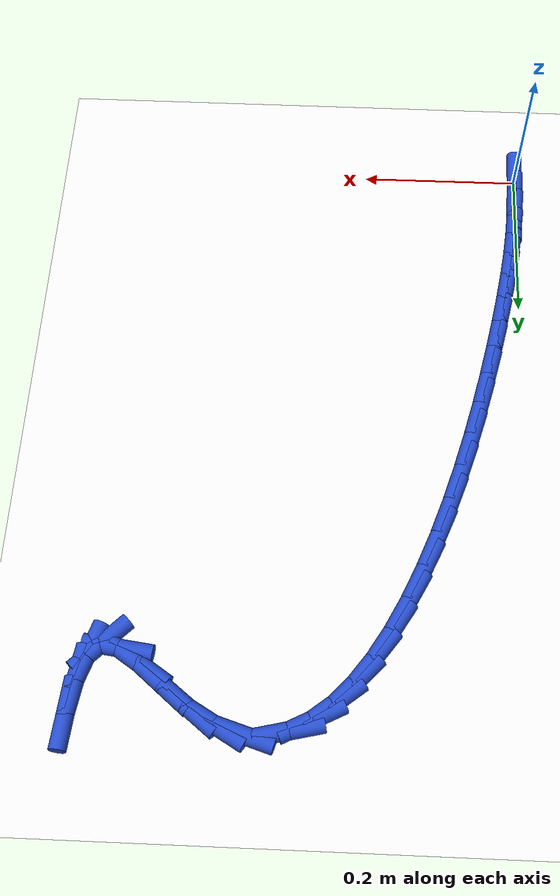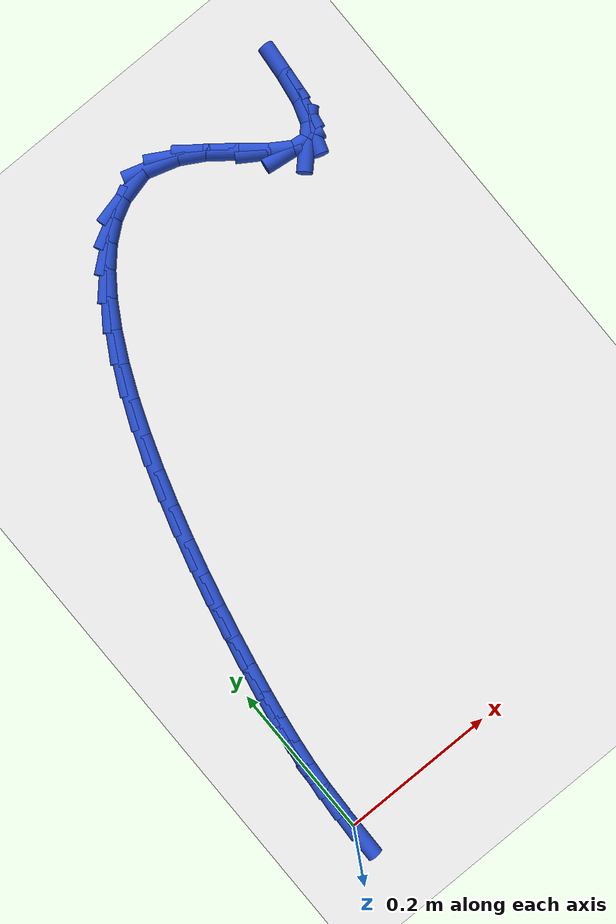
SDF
<sdf version="1.6">
 <world name="default">
  <model name="ground_plane">
   <static>1</static>
   <link name="link">
    <collision name="collision">
     <geometry><plane><normal>0 0 1</normal><size>100 100</size></plane></geometry>
     <surface><friction><ode><mu>100</mu><mu2>50</mu2></ode></friction></surface>
    </collision>
    <visual name="visual">
     <cast_shadows>0</cast_shadows>
     <geometry><plane><normal>0 0 1</normal><size>100 100</size></plane></geometry>
     <material>
      <script><uri>file://media/materials/scripts/gazebo.material</uri><name>Gazebo/WhiteGlow</name></script>
     </material>
    </visual>
   </link>
  </model>
  <model name="line">
   <link name="link_1">
    <pose>0.0004817022915168534 0.030828385576984422 0.01 0 1.57 1.5196772141333628</pose>
    <collision name="collision">
     <geometry><cylinder><radius>0.01</radius><length>0.08</length></cylinder></geometry>
    </collision>
    <visual name="visual">
     <material>
      <script><name>Gazebo/Blue</name><uri>file://media/materials/scripts/gazebo.material</uri></script>
     </material>
     <geometry><cylinder><radius>0.01</radius><length>0.08</length></cylinder></geometry>
    </visual>
   </link>
   <link name="link_2">
    <pose>0.002046395380871345 0.06141048760129893 0.01 0 1.57 1.4851034615570822</pose>
    <collision name="collision">
     <geometry><cylinder><radius>0.01</radius><length>0.08</length></cylinder></geometry>
    </collision>
    <visual name="visual">
     <material>
      <script><name>Gazebo/Blue</name><uri>file://media/materials/scripts/gazebo.material</uri></script>
     </material>
     <geometry><cylinder><radius>0.01</radius><length>0.08</length></cylinder></geometry>
    </visual>
   </link>
   <link name="link_3">
    <pose>0.004694872324788491 0.09224142009617421 0.01 0 1.57 1.4531140079023372</pose>
    <collision name="collision">
     <geometry><cylinder><radius>0.01</radius><length>0.08</length></cylinder></geometry>
    </collision>
    <visual name="visual">
     <material>
      <script><name>Gazebo/Blue</name><uri>file://media/materials/scripts/gazebo.material</uri></script>
     </material>
     <geometry><cylinder><radius>0.01</radius><length>0.08</length></cylinder></geometry>
    </visual>
   </link>
   <link name="link_4">
    <pose>0.008427926179993286 0.12381629708484068 0.01 0 1.57 1.4249975054829191</pose>
    <collision name="collision">
     <geometry><cylinder><radius>0.01</radius><length>0.08</length></cylinder></geometry>
    </collision>
    <visual name="visual">
     <material>
      <script><name>Gazebo/Blue</name><uri>file://media/materials/scripts/gazebo.material</uri></script>
     </material>
     <geometry><cylinder><radius>0.01</radius><length>0.08</length></cylinder></geometry>
    </visual>
   </link>
   <link name="link_5">
    <pose>0.013246350003210748 0.15663023259052902 0.01 0 1.57 1.4015227152400616</pose>
    <collision name="collision">
     <geometry><cylinder><radius>0.01</radius><length>0.08</length></cylinder></geometry>
    </collision>
    <visual name="visual">
     <material>
      <script><name>Gazebo/Blue</name><uri>file://media/materials/scripts/gazebo.material</uri></script>
     </material>
     <geometry><cylinder><radius>0.01</radius><length>0.08</length></cylinder></geometry>
    </visual>
   </link>
   <link name="link_6">
    <pose>0.019150936851165888 0.19117834063646985 0.01 0 1.57 1.3829308680715253</pose>
    <collision name="collision">
     <geometry><cylinder><radius>0.01</radius><length>0.08</length></cylinder></geometry>
    </collision>
    <visual name="visual">
     <material>
      <script><name>Gazebo/Blue</name><uri>file://media/materials/scripts/gazebo.material</uri></script>
     </material>
     <geometry><cylinder><radius>0.01</radius><length>0.08</length></cylinder></geometry>
    </visual>
   </link>
   <link name="link_7">
    <pose>0.026142483831508738 0.22795519654023153 0.01 0 1.57 1.3676389875326729</pose>
    <collision name="collision">
     <geometry><cylinder><radius>0.01</radius><length>0.08</length></cylinder></geometry>
    </collision>
    <visual name="visual">
     <material>
      <script><name>Gazebo/Blue</name><uri>file://media/materials/scripts/gazebo.material</uri></script>
     </material>
     <geometry><cylinder><radius>0.01</radius><length>0.08</length></cylinder></geometry>
    </visual>
   </link>
   <link name="link_8">
    <pose>0.034223820217309575 0.2671851314141515 0.01 0 1.57 1.3515767439560131</pose>
    <collision name="collision">
     <geometry><cylinder><radius>0.01</radius><length>0.08</length></cylinder></geometry>
    </collision>
    <visual name="visual">
     <material>
      <script><name>Gazebo/Blue</name><uri>file://media/materials/scripts/gazebo.material</uri></script>
     </material>
     <geometry><cylinder><radius>0.01</radius><length>0.08</length></cylinder></geometry>
    </visual>
   </link>
   <link name="link_9">
    <pose>0.043403097297997684 0.30838473670189154 0.01 0 1.57 1.333717444130101</pose>
    <collision name="collision">
     <geometry><cylinder><radius>0.01</radius><length>0.08</length></cylinder></geometry>
    </collision>
    <visual name="visual">
     <material>
      <script><name>Gazebo/Blue</name><uri>file://media/materials/scripts/gazebo.material</uri></script>
     </material>
     <geometry><cylinder><radius>0.01</radius><length>0.08</length></cylinder></geometry>
    </visual>
   </link>
   <link name="link_10">
    <pose>0.05368932692404109 0.3509561635404214 0.01 0 1.57 1.313569493242332</pose>
    <collision name="collision">
     <geometry><cylinder><radius>0.01</radius><length>0.08</length></cylinder></geometry>
    </collision>
    <visual name="visual">
     <material>
      <script><name>Gazebo/Blue</name><uri>file://media/materials/scripts/gazebo.material</uri></script>
     </material>
     <geometry><cylinder><radius>0.01</radius><length>0.08</length></cylinder></geometry>
    </visual>
   </link>
   <link name="link_11">
    <pose>0.06509152094590767 0.3943015630667108 0.01 0 1.57 1.2905338697243343</pose>
    <collision name="collision">
     <geometry><cylinder><radius>0.01</radius><length>0.08</length></cylinder></geometry>
    </collision>
    <visual name="visual">
     <material>
      <script><name>Gazebo/Blue</name><uri>file://media/materials/scripts/gazebo.material</uri></script>
     </material>
     <geometry><cylinder><radius>0.01</radius><length>0.08</length></cylinder></geometry>
    </visual>
   </link>
   <link name="link_12">
    <pose>0.07761869121406546 0.4378230864177297 0.01 0 1.57 1.2638482378023026</pose>
    <collision name="collision">
     <geometry><cylinder><radius>0.01</radius><length>0.08</length></cylinder></geometry>
    </collision>
    <visual name="visual">
     <material>
      <script><name>Gazebo/Blue</name><uri>file://media/materials/scripts/gazebo.material</uri></script>
     </material>
     <geometry><cylinder><radius>0.01</radius><length>0.08</length></cylinder></geometry>
    </visual>
   </link>
   <link name="link_13">
    <pose>0.09127984957898234 0.4809228847304477 0.01 0 1.57 1.232511752893902</pose>
    <collision name="collision">
     <geometry><cylinder><radius>0.01</radius><length>0.08</length></cylinder></geometry>
    </collision>
    <visual name="visual">
     <material>
      <script><name>Gazebo/Blue</name><uri>file://media/materials/scripts/gazebo.material</uri></script>
     </material>
     <geometry><cylinder><radius>0.01</radius><length>0.08</length></cylinder></geometry>
    </visual>
   </link>
   <link name="link_14">
    <pose>0.1060840078911263 0.5230031091418346 0.01 0 1.57 1.1951772889500376</pose>
    <collision name="collision">
     <geometry><cylinder><radius>0.01</radius><length>0.08</length></cylinder></geometry>
    </collision>
    <visual name="visual">
     <material>
      <script><name>Gazebo/Blue</name><uri>file://media/materials/scripts/gazebo.material</uri></script>
     </material>
     <geometry><cylinder><radius>0.01</radius><length>0.08</length></cylinder></geometry>
    </visual>
   </link>
   <link name="link_15">
    <pose>0.12204017800096531 0.5634659107888601 0.01 0 1.57 1.1499923260401879</pose>
    <collision name="collision">
     <geometry><cylinder><radius>0.01</radius><length>0.08</length></cylinder></geometry>
    </collision>
    <visual name="visual">
     <material>
      <script><name>Gazebo/Blue</name><uri>file://media/materials/scripts/gazebo.material</uri></script>
     </material>
     <geometry><cylinder><radius>0.01</radius><length>0.08</length></cylinder></geometry>
    </visual>
   </link>
   <link name="link_16">
    <pose>0.1391573717589673 0.6017134408084943 0.01 0 1.57 1.0943622958399073</pose>
    <collision name="collision">
     <geometry><cylinder><radius>0.01</radius><length>0.08</length></cylinder></geometry>
    </collision>
    <visual name="visual">
     <material>
      <script><name>Gazebo/Blue</name><uri>file://media/materials/scripts/gazebo.material</uri></script>
     </material>
     <geometry><cylinder><radius>0.01</radius><length>0.08</length></cylinder></geometry>
    </visual>
   </link>
   <link name="link_17">
    <pose>0.15744460101560026 0.6371478503377068 0.01 0 1.57 1.0246058608984216</pose>
    <collision name="collision">
     <geometry><cylinder><radius>0.01</radius><length>0.08</length></cylinder></geometry>
    </collision>
    <visual name="visual">
     <material>
      <script><name>Gazebo/Blue</name><uri>file://media/materials/scripts/gazebo.material</uri></script>
     </material>
     <geometry><cylinder><radius>0.01</radius><length>0.08</length></cylinder></geometry>
    </visual>
   </link>
   <link name="link_18">
    <pose>0.1769108776213321 0.6691712905134674 0.01 0 1.57 0.9354924277948665</pose>
    <collision name="collision">
     <geometry><cylinder><radius>0.01</radius><length>0.08</length></cylinder></geometry>
    </collision>
    <visual name="visual">
     <material>
      <script><name>Gazebo/Blue</name><uri>file://media/materials/scripts/gazebo.material</uri></script>
     </material>
     <geometry><cylinder><radius>0.01</radius><length>0.08</length></cylinder></geometry>
    </visual>
   </link>
   <link name="link_19">
    <pose>0.19756521342663086 0.6971859124727459 0.01 0 1.57 0.8197763496850885</pose>
    <collision name="collision">
     <geometry><cylinder><radius>0.01</radius><length>0.08</length></cylinder></geometry>
    </collision>
    <visual name="visual">
     <material>
      <script><name>Gazebo/Blue</name><uri>file://media/materials/scripts/gazebo.material</uri></script>
     </material>
     <geometry><cylinder><radius>0.01</radius><length>0.08</length></cylinder></geometry>
    </visual>
   </link>
   <link name="link_20">
    <pose>0.21941662028196435 0.7205938673525119 0.01 0 1.57 0.6682936282033193</pose>
    <collision name="collision">
     <geometry><cylinder><radius>0.01</radius><length>0.08</length></cylinder></geometry>
    </collision>
    <visual name="visual">
     <material>
      <script><name>Gazebo/Blue</name><uri>file://media/materials/scripts/gazebo.material</uri></script>
     </material>
     <geometry><cylinder><radius>0.01</radius><length>0.08</length></cylinder></geometry>
    </visual>
   </link>
   <link name="link_21">
    <pose>0.24247411003780062 0.7387973062897352 0.01 0 1.57 0.4723364206903863</pose>
    <collision name="collision">
     <geometry><cylinder><radius>0.01</radius><length>0.08</length></cylinder></geometry>
    </collision>
    <visual name="visual">
     <material>
      <script><name>Gazebo/Blue</name><uri>file://media/materials/scripts/gazebo.material</uri></script>
     </material>
     <geometry><cylinder><radius>0.01</radius><length>0.08</length></cylinder></geometry>
    </visual>
   </link>
   <link name="link_22">
    <pose>0.2667466945446077 0.7511983804213861 0.01 0 1.57 0.2311515779181811</pose>
    <collision name="collision">
     <geometry><cylinder><radius>0.01</radius><length>0.08</length></cylinder></geometry>
    </collision>
    <visual name="visual">
     <material>
      <script><name>Gazebo/Blue</name><uri>file://media/materials/scripts/gazebo.material</uri></script>
     </material>
     <geometry><cylinder><radius>0.01</radius><length>0.08</length></cylinder></geometry>
    </visual>
   </link>
   <link name="link_24">
    <pose>0.3189731952130057 0.7562020388158484 0.01 0 1.57 -0.29805350194099717</pose>
    <collision name="collision">
     <geometry><cylinder><radius>0.01</radius><length>0.08</length></cylinder></geometry>
    </collision>
    <visual name="visual">
     <material>
      <script><name>Gazebo/Blue</name><uri>file://media/materials/scripts/gazebo.material</uri></script>
     </material>
     <geometry><cylinder><radius>0.01</radius><length>0.08</length></cylinder></geometry>
    </visual>
   </link>
   <link name="link_25">
    <pose>0.34694513507553276 0.7476089253525995 0.01 0 1.57 -0.5210832161069502</pose>
    <collision name="collision">
     <geometry><cylinder><radius>0.01</radius><length>0.08</length></cylinder></geometry>
    </collision>
    <visual name="visual">
     <material>
      <script><name>Gazebo/Blue</name><uri>file://media/materials/scripts/gazebo.material</uri></script>
     </material>
     <geometry><cylinder><radius>0.01</radius><length>0.08</length></cylinder></geometry>
    </visual>
   </link>
   <link name="link_26">
    <pose>0.37616404134145554 0.7308372425615483 0.01 0 1.57 -0.6617652204785025</pose>
    <collision name="collision">
     <geometry><cylinder><radius>0.01</radius><length>0.08</length></cylinder></geometry>
    </collision>
    <visual name="visual">
     <material>
      <script><name>Gazebo/Blue</name><uri>file://media/materials/scripts/gazebo.material</uri></script>
     </material>
     <geometry><cylinder><radius>0.01</radius><length>0.08</length></cylinder></geometry>
    </visual>
   </link>
   <link name="link_27">
    <pose>0.4060058005009487 0.7075923839278063 0.01 0 1.57 -0.6846321859253136</pose>
    <collision name="collision">
     <geometry><cylinder><radius>0.01</radius><length>0.08</length></cylinder></geometry>
    </collision>
    <visual name="visual">
     <material>
      <script><name>Gazebo/Blue</name><uri>file://media/materials/scripts/gazebo.material</uri></script>
     </material>
     <geometry><cylinder><radius>0.01</radius><length>0.08</length></cylinder></geometry>
    </visual>
   </link>
   <link name="link_28">
    <pose>0.4345518635776319 0.6842887607242489 0.01 0 1.57 -0.576540801429091</pose>
    <collision name="collision">
     <geometry><cylinder><radius>0.01</radius><length>0.08</length></cylinder></geometry>
    </collision>
    <visual name="visual">
     <material>
      <script><name>Gazebo/Blue</name><uri>file://media/materials/scripts/gazebo.material</uri></script>
     </material>
     <geometry><cylinder><radius>0.01</radius><length>0.08</length></cylinder></geometry>
    </visual>
   </link>
   <link name="link_29">
    <pose>0.45972424982475063 0.6679207799531796 0.01 0 1.57 -0.12818487885726956</pose>
    <collision name="collision">
     <geometry><cylinder><radius>0.01</radius><length>0.08</length></cylinder></geometry>
    </collision>
    <visual name="visual">
     <material>
      <script><name>Gazebo/Blue</name><uri>file://media/materials/scripts/gazebo.material</uri></script>
     </material>
     <geometry><cylinder><radius>0.01</radius><length>0.08</length></cylinder></geometry>
    </visual>
   </link>
   <link name="link_30">
    <pose>0.47948115888364623 0.6653742801689198 0.01 0 1.57 0.7882257571373025</pose>
    <collision name="collision">
     <geometry><cylinder><radius>0.01</radius><length>0.08</length></cylinder></geometry>
    </collision>
    <visual name="visual">
     <material>
      <script><name>Gazebo/Blue</name><uri>file://media/materials/scripts/gazebo.material</uri></script>
     </material>
     <geometry><cylinder><radius>0.01</radius><length>0.08</length></cylinder></geometry>
    </visual>
   </link>
   <link name="link_31">
    <pose>0.4932263269047279 0.6791974003167964 0.01 0 1.57 1.2482002838909911</pose>
    <collision name="collision">
     <geometry><cylinder><radius>0.01</radius><length>0.08</length></cylinder></geometry>
    </collision>
    <visual name="visual">
     <material>
      <script><name>Gazebo/Blue</name><uri>file://media/materials/scripts/gazebo.material</uri></script>
     </material>
     <geometry><cylinder><radius>0.01</radius><length>0.08</length></cylinder></geometry>
    </visual>
   </link>
   <link name="link_32">
    <pose>0.502264186214137 0.706234757496399 0.01 0 1.57 1.4150362834357857</pose>
    <collision name="collision">
     <geometry><cylinder><radius>0.01</radius><length>0.08</length></cylinder></geometry>
    </collision>
    <visual name="visual">
     <material>
      <script><name>Gazebo/Blue</name><uri>file://media/materials/scripts/gazebo.material</uri></script>
     </material>
     <geometry><cylinder><radius>0.01</radius><length>0.08</length></cylinder></geometry>
    </visual>
   </link>
   <link name="link_33">
    <pose>0.5080285251550136 0.7429428032087051 0.01 0 1.57 1.4794303102696176</pose>
    <collision name="collision">
     <geometry><cylinder><radius>0.01</radius><length>0.08</length></cylinder></geometry>
    </collision>
    <visual name="visual">
     <material>
      <script><name>Gazebo/Blue</name><uri>file://media/materials/scripts/gazebo.material</uri></script>
     </material>
     <geometry><cylinder><radius>0.01</radius><length>0.08</length></cylinder></geometry>
    </visual>
   </link>
   <link name="link_280">
    <pose>-3.903127820947816e-18 1.5959455978986625e-16 0.01 0 1.57 1.5550435129697053</pose>
    <collision name="collision">
     <geometry><cylinder><radius>0.01</radius><length>0.08</length></cylinder></geometry>
    </collision>
    <visual name="visual">
     <material>
      <script><name>Gazebo/Blue</name><uri>file://media/materials/scripts/gazebo.material</uri></script>
     </material>
     <geometry><cylinder><radius>0.01</radius><length>0.08</length></cylinder></geometry>
    </visual>
   </link>
   <link name="link_281">
    <pose>0.0004839704809675473 0.030720254366364007 0.01 0 1.57 1.5178513627507566</pose>
    <collision name="collision">
     <geometry><cylinder><radius>0.01</radius><length>0.08</length></cylinder></geometry>
    </collision>
    <visual name="visual">
     <material>
      <script><name>Gazebo/Blue</name><uri>file://media/materials/scripts/gazebo.material</uri></script>
     </material>
     <geometry><cylinder><radius>0.01</radius><length>0.08</length></cylinder></geometry>
    </visual>
   </link>
   <link name="link_282">
    <pose>0.002064540896476919 0.060545437916335376 0.01 0 1.57 1.5367105005506607</pose>
    <collision name="collision">
     <geometry><cylinder><radius>0.01</radius><length>0.08</length></cylinder></geometry>
    </collision>
    <visual name="visual">
     <material>
      <script><name>Gazebo/Blue</name><uri>file://media/materials/scripts/gazebo.material</uri></script>
     </material>
     <geometry><cylinder><radius>0.01</radius><length>0.08</length></cylinder></geometry>
    </visual>
   </link>
  </model>
 </world>
</sdf>
